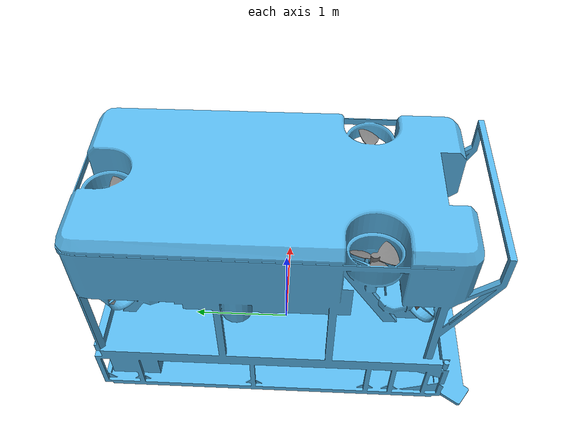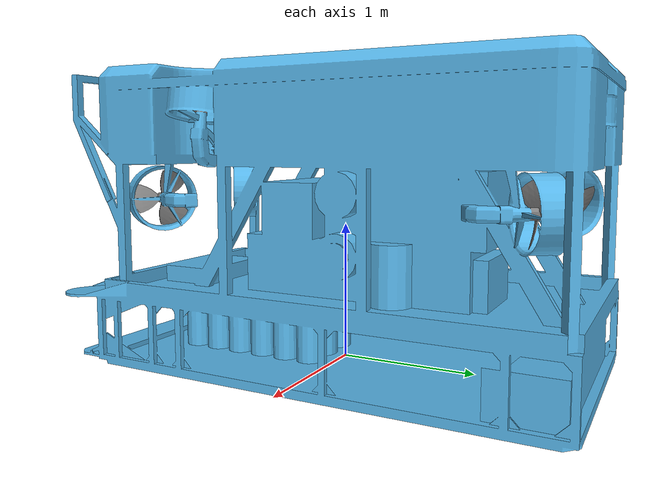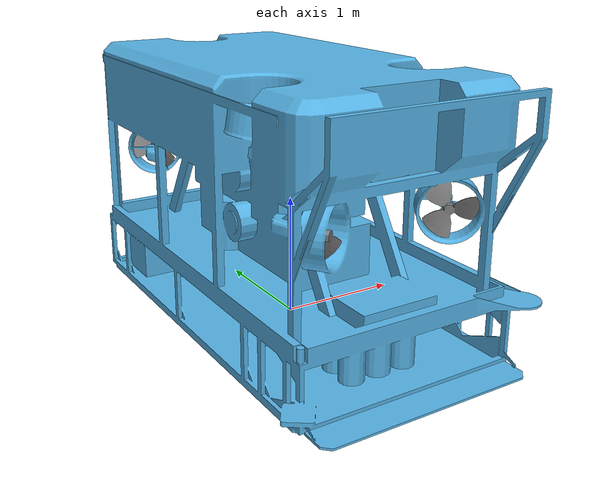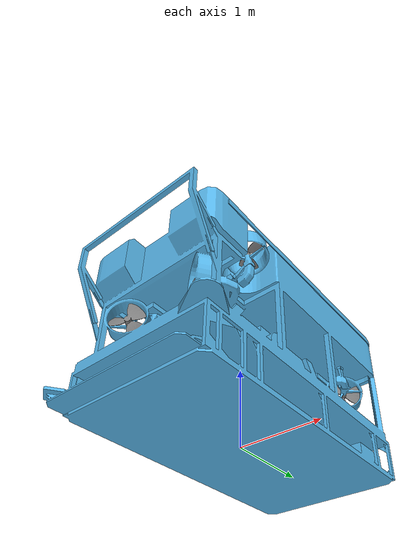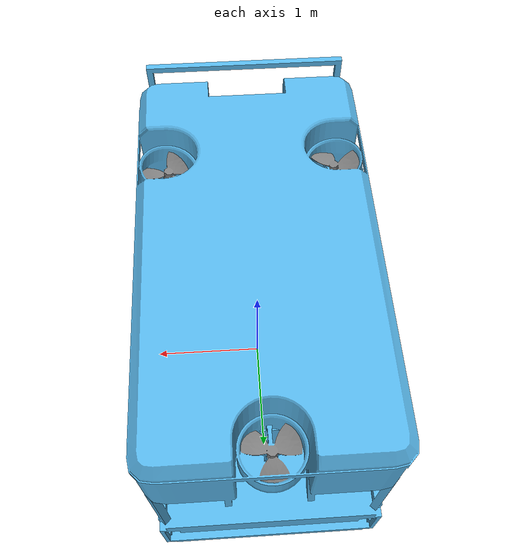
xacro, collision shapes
<?xml version="1.0"?>

<robot name="doc_ricketts" xmlns:xacro="https://www.ros.org/wiki/xacro">
    <xacro:arg name="debug" default="false"/>
    <xacro:arg name="namespace" default="doc_ricketts"/>

    <!-- "Dummy" base link to eliminate root link inertia warning -->
    <link name="$(arg namespace)/base_link"/>

    <link name="$(arg namespace)/doc_ricketts_link">
        <!-- Values loosely based on https://www.mbari.org/at-sea/vehicles/remotely-operated-vehicles/rov-docricketts-specifications-2/ -->
        <!-- Inertia values based on uniform mass distribution -->
        <inertial>
        	<origin xyz="0 0 0" rpy="0 0 0"/>
        	<mass value="4762.7"/>
        	<inertia
        		ixx="7116.41" ixy="0.0" ixz="0.0"
        		iyy="6637.07" iyz="0.0"
        		izz="3134.17"/>
        </inertial>
        <visual>
            <origin xyz="0 0 0" rpy="0 0 0"/>
            <geometry>
                <mesh filename="package://doc_ricketts_description/meshes/ROV.dae" scale="1 1 1"/>
            </geometry>
        </visual>
        <collision>
            <origin xyz="0 0 0" rpy="0 0 0"/>
            <geometry>
                <mesh filename="package://doc_ricketts_description/meshes/ROV.dae" scale="1 1 1"/>
            </geometry>
        </collision>
    </link>

    <joint name="$(arg namespace)/doc_ricketts_base_joint" type="fixed">
        <origin xyz="0 0 0" rpy="0 0 0"/>
        <parent link="$(arg namespace)/base_link"/>
        <child link="$(arg namespace)/doc_ricketts_link"/>
    </joint>

    <gazebo>
        <plugin name="uuv_plgin" filename="libuuv_underwater_object_ros_plugin.so">
            <!-- Hydro parameters for vehicle -->
            <fluid_density>1028.0</fluid_density>
            <flow_velocity_topic>hydrodynamics/current_velocity</flow_velocity_topic>
            <debug>false</debug>

            <link name="$(arg namespace)/base_link">
                <neutrally_buoyant>1</neutrally_buoyant>
                <!-- See eNovus technical specifications -->
                <volume>1.8382</volume> <!-- This is a guess (similar size to Smilodon but heavier) -->
                <box>
                    <width>1.83</width>
                    <length>3.66</length>
                    <height>2.13</height>
                </box>
                <!-- Center of buoyancy is a guess, using same value as RexRov -->
                <center_of_buoyancy>0.0 0.0 0.3</center_of_buoyancy>
                <hydrodynamic_model>
                    <type>fossen</type>
                    <!-- Everything else in the model is pulled straight from Berg2012
                    (which means it's not even close for this vehicle) -->
                    <!-- Added mass: see p.28 in Berg2012 -->
                    <added_mass>
                        779.79 -6.8773 -103.32  8.5426 -165.54 -7.8033
                        -6.8773    1222   51.29  409.44 -5.8488  62.726
                        -103.32   51.29  3659.9  6.1112 -386.42  10.774
                        8.5426  409.44  6.1112   534.9 -10.027  21.019
                        -165.54 -5.8488 -386.42 -10.027  842.69 -1.1162
                        -7.8033  62.726  10.775  21.019 -1.1162  224.32
                    </added_mass>
                    <!-- Linear damping: see p.31 in Berg2012 -->
                    <linear_damping>
                        -74.82 -69.48 -728.4 -268.8 -309.77 -105
                    </linear_damping>
                    <!-- Non-linear damping: see p.30 in Berg2012 -->
                    <quadratic_damping>
                        -748.22 -992.53 -1821.01 -672 -774.44 -523.27
                    </quadratic_damping>
                </hydrodynamic_model>
            </link>
        </plugin>
    </gazebo>

    <!-- Default joint state publisher -->
    <gazebo>
        <plugin name="uuv_joint_state_publisher" filename="libuuv_joint_state_publisher.so">
            <robotNamespace>$(arg namespace)</robotNamespace>
            <updateRate>50</updateRate>
        </plugin>
    </gazebo>

    <xacro:property name="prop_mesh_file" value="file://$(find eca_a9_description)/mesh/eca_a9_propeller.dae"/>
    <xacro:include filename="$(find uuv_descriptions)/urdf/common.urdf.xacro"/>
    <xacro:include filename="$(find uuv_gazebo_ros_plugins)/urdf/thruster_snippets.xacro"/>

    <xacro:macro name="thruster_macro" params="thruster_id *origin">
        <xacro:thruster_module_first_order_basic_fcn_macro namespace="$(arg namespace)" thruster_id="${thruster_id}" mesh_filename="${prop_mesh_file}" dyn_time_constant="0.05" rotor_constant="0.00031">
            <xacro:insert_block name="origin"/>
        </xacro:thruster_module_first_order_basic_fcn_macro>
    </xacro:macro>

    <!-- Port-Aft RL-->
    <xacro:thruster_macro thruster_id="0">
        <origin xyz="0.53491 1.51341 1.18597" rpy="1.5708 0.0 0.610865"/>
    </xacro:thruster_macro>
    <!-- Starboard-Aft RR-->
    <xacro:thruster_macro thruster_id="1">
        <origin xyz="-0.536834 1.51248 1.18592" rpy="1.5708 0.0 -0.610865"/>
    </xacro:thruster_macro>
    <!-- Port-Forward FL-->
    <xacro:thruster_macro thruster_id="2">
        <origin xyz="0.539848 -1.28724 1.18875" rpy="1.5708 0.0 -0.610865"/>
    </xacro:thruster_macro>
    <!-- Starboard-Forward FR-->
    <xacro:thruster_macro thruster_id="3">
        <origin xyz="-0.536692 -1.28841 1.1888" rpy="1.5708 0.0 -2.53073"/>
    </xacro:thruster_macro>
    <!-- Port-Forward-Vertical TL-->
    <xacro:thruster_macro thruster_id="4">
        <origin xyz="0.706649 -0.761326 1.8604" rpy="0.0 -0.174533 0.0"/>
    </xacro:thruster_macro>
    <!-- Starboard-Forward-Vertical TR-->
    <xacro:thruster_macro thruster_id="5">
        <origin xyz="-0.70968 -0.761276 1.85086" rpy="0.0 0.174533 0.0"/>
    </xacro:thruster_macro>
    <!-- Aft-Vertical (central)-->
    <xacro:thruster_macro thruster_id="6">
        <origin xyz="2.54822e-05 1.63582 1.78479" rpy="0.0 0.0 0.0"/>
    </xacro:thruster_macro>
</robot>

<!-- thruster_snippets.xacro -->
<robot xmlns:xacro="http://www.ros.org/wiki/xacro">

  <!-- ROTOR DYNAMICS MACROS -->

  <!-- First order dynamics -->

  <xacro:macro name="rotor_dyn_first_order_macro" params="time_constant">
    <dynamics>
      <type>FirstOrder</type>
      <timeConstant>${time_constant}</timeConstant>
    </dynamics>
  </xacro:macro>

  <!--
    MACROS FOR CONVERSION FUNCTIONS BETWEEN ROTOR'S ANG. VELOCITY AND
    THRUSTER FORCE
  -->

  <!--
    1) Basic curve
      Input: x
      Output: thrust
      Function: thrust = rotorConstant * x * abs(x)
  -->
  <xacro:macro name="thruster_cf_basic_macro"
    params="rotor_constant">
    <conversion>
      <type>Basic</type>
      <rotorConstant>${rotor_constant}</rotorConstant>
    </conversion>
  </xacro:macro>

  <xacro:macro name="thruster_cf_dead_zone_macro"
    params="rotor_constant_l
            rotor_constant_r
            delta_l
            delta_r">
    <conversion>
      <type>Bessa</type>
      <rotorConstantL>${rotor_constant_l}</rotorConstantL>
      <rotorConstantR>${rotor_constant_r}</rotorConstantR>
      <deltaL>${delta_l}</deltaL>
      <deltaR>${delta_r}</deltaR>
    </conversion>
  </xacro:macro>

  <xacro:macro name="thruster_cf_linear_interp_macro"
    params="input_values
            output_values">
    <conversion>
      <type>LinearInterp</type>
      <inputValues>${input_values}</inputValues>
      <outputValues>${output_values}</outputValues>
    </conversion>
  </xacro:macro>

  <!-- THRUSTER MODULE MACROS  -->

  <xacro:macro name="generic_thruster_macro"
    params="namespace
            thruster_id
            *origin
            mesh_filename
            *dynamics
            *conversion">
    <joint name="${namespace}/thruster_${thruster_id}_joint" type="continuous">
      <xacro:insert_block name="origin"/>
      <axis xyz="1 0 0"/>
      <parent link="${namespace}/base_link"/>
      <child link="${namespace}/thruster_${thruster_id}"/>
    </joint>

    <link name="${namespace}/thruster_${thruster_id}">
      <xacro:box_inertial x="0" y="0" z="0" mass="0.001">
        <origin xyz="0 0 0" rpy="0 0 0"/>
      </xacro:box_inertial>
      <visual>
        <origin rpy="0 0 0" xyz="0 0 0"/>
        <geometry>
          <mesh filename="${mesh_filename}" scale="1 1 1"/>
        </geometry>
      </visual>
      <collision>
        <!-- todo: gazebo needs a collision volume or it will ignore the pose of
           the joint that leads to this link (and assume it to be the identity) -->
        <geometry>
          <cylinder length="0.000001" radius="0.000001"/>
        </geometry>
        <origin xyz="0 0 0" rpy="0 0 0"/>
      </collision>
    </link>

    <gazebo>
      <plugin name="${namespace}_${thruster_id}_thruster_model" filename="libuuv_thruster_ros_plugin.so">
        <linkName>${namespace}/thruster_${thruster_id}</linkName>
        <jointName>${namespace}/thruster_${thruster_id}_joint</jointName>
        <thrusterID>${thruster_id}</thrusterID>
        <xacro:insert_block name="dynamics"/>
        <xacro:insert_block name="conversion"/>
      </plugin>
    </gazebo>

    <gazebo reference="${namespace}/thruster_${thruster_id}">
      <selfCollide>false</selfCollide>
    </gazebo>
  </xacro:macro>

  <!--
    Thruster model with first order dynamic model for the rotor dynamics
    and a proportional non-linear steady-state conversion from the rotor's
    angular velocity to output thrust force
  -->

  <xacro:macro name="thruster_module_first_order_basic_fcn_macro"
      params="namespace
              thruster_id
              *origin
              mesh_filename
              dyn_time_constant
              rotor_constant">
    <xacro:generic_thruster_macro
      namespace="${namespace}"
      thruster_id="${thruster_id}"
      mesh_filename="${mesh_filename}">
      <xacro:insert_block name="origin"/>
      <xacro:rotor_dyn_first_order_macro time_constant="${dyn_time_constant}"/>
      <xacro:thruster_cf_basic_macro rotor_constant="${rotor_constant}"/>
    </xacro:generic_thruster_macro>
  </xacro:macro>

</robot>
